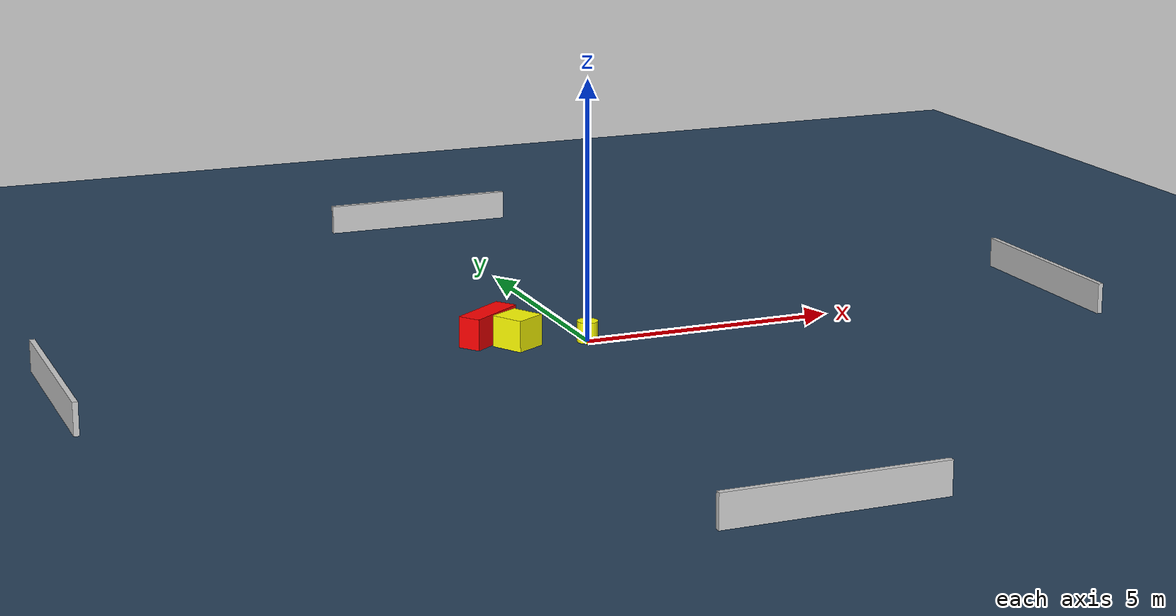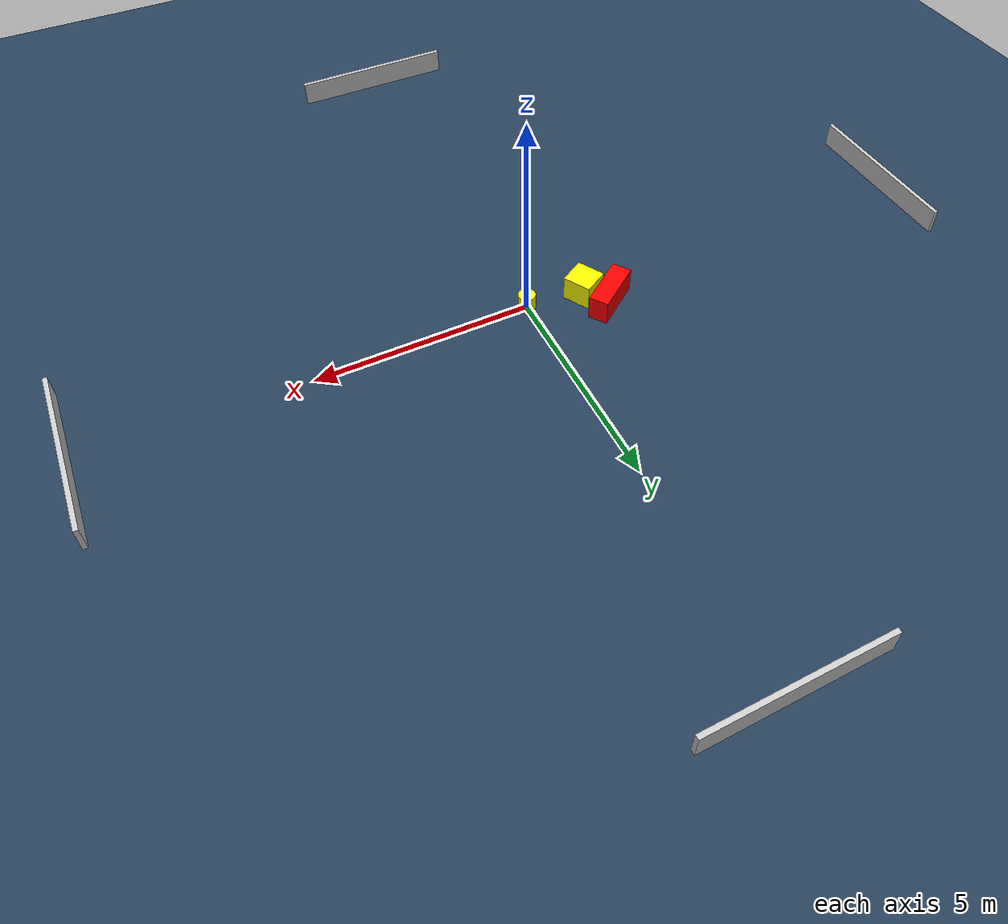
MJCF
<?xml version="1.0" ?>
<mujoco model="generated_environment">
  <option timestep="0.01" integrator="RK4" cone="elliptic"/>
  <default>
    <geom density="1"/>
  </default>
  <asset>
    <texture builtin="gradient" height="3072" name="skybox" rgb1="0.3 0.5 0.7" rgb2="0 0 0" type="skybox" width="512"/>
    <texture builtin="checker" height="300" name="groundplane" rgb1="0.2 0.3 0.4" rgb2="0.1 0.2 0.3" type="2d" width="300"/>
    <material name="groundplane" reflectance="0.2" texrepeat="5 5" texture="groundplane"/>
  </asset>
  <worldbody>
    <light dir="0 0 -1" directional="true" pos="0 0 1.5"/>
    <geom condim="3" friction="0.5 0.005 0.001" material="groundplane" name="floor" pos="0 0 0" size="0 0 0.05" type="plane"/>
    <body name="walls">
      <geom name="wall_1" condim="4" pos="-10.0 0.0 0.3" rgba="0.800000011920929 0.800000011920929 0.800000011920929 1.0" size="0.05 2.0 0.3" type="box"/>
      <geom name="wall_2" condim="4" pos="10.0 0.0 0.3" rgba="0.800000011920929 0.800000011920929 0.800000011920929 1.0" size="0.05 2.0 0.3" type="box"/>
      <geom name="wall_3" condim="4" pos="0.0 -10.0 0.3" rgba="0.800000011920929 0.800000011920929 0.800000011920929 1.0" size="2.0 0.05 0.3" type="box"/>
      <geom name="wall_4" condim="4" pos="0.0 10.0 0.3" rgba="0.800000011920929 0.800000011920929 0.800000011920929 1.0" size="2.0 0.05 0.3" type="box"/>
    </body>
    <body name="robot">
      <joint name="joint_x" type="slide" pos="0 0 0" axis="1 0 0"/>
      <joint name="joint_y" type="slide" pos="0 0 0" axis="0 1 0"/>
      <geom name="robot" type="cylinder" pos="0.0 0.0 0.2" size="0.2 0.2 0.0" mass="5.0" friction="1.0 0.005 0.0001" condim="4" rgba="1.0 1.0 0.0 1.0"/>
    </body>
    <body name="obstacle_1_movable">
      <geom name="obstacle_1_movable" condim="4" pos="-1.32988310973367 0.21265363074772808 0.3" euler="0 0 209.8551962112112" friction="0.0 0.005 0.001" rgba="1.0 1.0 0.0 1.0" size="0.3156783404177268 0.3298647989360166 0.3" type="box" mass="0.1"/>
      <joint type="free"/>
    </body>
    <body name="obstacle_2_static">
      <geom name="obstacle_2_static" condim="4" pos="-1.7413150310479657 0.6965876280577808 0.3" euler="0 0 305.8836672896772" friction="0.0 0.005 0.001" rgba="1.0 0.0 0.0 1.0" size="0.2246580131827092 0.6238514176357334 0.3" type="box"/>
    </body>
  </worldbody>
  <actuator>
    <motor name="actuator_x" joint="joint_x" gear="1" ctrlrange="-1 1"/>
    <motor name="actuator_y" joint="joint_y" gear="1" ctrlrange="-1 1"/>
  </actuator>
</mujoco>
